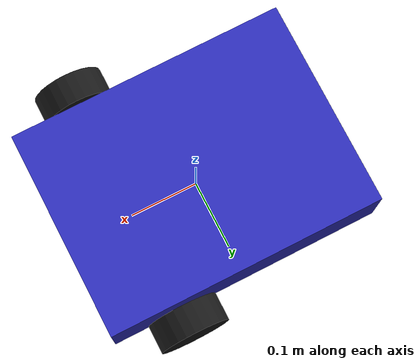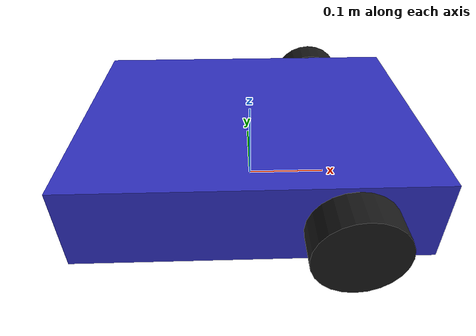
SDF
<?xml version="1.0" ?>
<sdf version="1.6">
  <world name="diff_drive_world">
    <!-- 물리 설정 -->
    <physics name="1ms" type="ode">
      <max_step_size>0.001</max_step_size>
      <real_time_factor>1.0</real_time_factor>
      <real_time_update_rate>1000</real_time_update_rate>
    </physics>

    <!-- 기본 플러그인 -->
    <plugin
      filename="ignition-gazebo-physics-system"
      name="ignition::gazebo::systems::Physics">
    </plugin>
    <plugin
      filename="ignition-gazebo-user-commands-system"
      name="ignition::gazebo::systems::UserCommands">
    </plugin>
    <plugin
      filename="ignition-gazebo-scene-broadcaster-system"
      name="ignition::gazebo::systems::SceneBroadcaster">
    </plugin>

    <!-- 조명 -->
    <light type="directional" name="sun">
      <cast_shadows>true</cast_shadows>
      <pose>0 0 10 0 0 0</pose>
      <diffuse>0.8 0.8 0.8 1</diffuse>
      <specular>0.2 0.2 0.2 1</specular>
      <direction>-0.5 0.1 -0.9</direction>
    </light>

    <!-- 지면 모델 포함 -->
    <include>
      <uri>file://models/ground_plane/model.sdf</uri>
    </include>

    <!-- 로봇 모델 포함 -->
    <include>
      <uri>file://models/diff_drive_robot/model.sdf</uri>
      <pose>0 0 0 0 0 0</pose>
    </include>
  </world>
</sdf>

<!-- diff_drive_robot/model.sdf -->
<sdf version="1.6">
  <model name="diff_drive_robot">
    <!-- 로봇 본체 -->
    <link name="chassis">
      <pose>0 0 0.05 0 0 0</pose>
      <inertial>
        <mass>5.0</mass>
        <inertia>
          <ixx>0.0417</ixx>
          <iyy>0.0417</iyy>
          <izz>0.0833</izz>
          <ixy>0</ixy>
          <ixz>0</ixz>
          <iyz>0</iyz>
        </inertia>
      </inertial>
      <collision name="collision">
        <geometry>
          <box>
            <size>0.4 0.3 0.1</size>
          </box>
        </geometry>
      </collision>
      <visual name="visual">
        <geometry>
          <box>
            <size>0.4 0.3 0.1</size>
          </box>
        </geometry>
        <material>
          <ambient>0.2 0.2 0.8 1</ambient>
          <diffuse>0.2 0.2 0.8 1</diffuse>
          <specular>0.1 0.1 0.1 1</specular>
        </material>
      </visual>
    </link>

    <!-- 좌측 바퀴 -->
    <link name="left_wheel">
      <pose>0.1 0.175 0.05 -1.5707 0 0</pose>
      <inertial>
        <mass>1.0</mass>
        <inertia>
          <ixx>0.0029</ixx>
          <iyy>0.0029</iyy>
          <izz>0.0052</izz>
          <ixy>0</ixy>
          <ixz>0</ixz>
          <iyz>0</iyz>
        </inertia>
      </inertial>
      <collision name="collision">
        <geometry>
          <cylinder>
            <radius>0.05</radius>
            <length>0.04</length>
          </cylinder>
        </geometry>
      </collision>
      <visual name="visual">
        <geometry>
          <cylinder>
            <radius>0.05</radius>
            <length>0.04</length>
          </cylinder>
        </geometry>
        <material>
          <ambient>0.1 0.1 0.1 1</ambient>
          <diffuse>0.1 0.1 0.1 1</diffuse>
          <specular>0.1 0.1 0.1 1</specular>
        </material>
      </visual>
    </link>

    <!-- 우측 바퀴 -->
    <link name="right_wheel">
      <pose>0.1 -0.175 0.05 -1.5707 0 0</pose>
      <inertial>
        <mass>1.0</mass>
        <inertia>
          <ixx>0.0029</ixx>
          <iyy>0.0029</iyy>
          <izz>0.0052</izz>
          <ixy>0</ixy>
          <ixz>0</ixz>
          <iyz>0</iyz>
        </inertia>
      </inertial>
      <collision name="collision">
        <geometry>
          <cylinder>
            <radius>0.05</radius>
            <length>0.04</length>
          </cylinder>
        </geometry>
      </collision>
      <visual name="visual">
        <geometry>
          <cylinder>
            <radius>0.05</radius>
            <length>0.04</length>
          </cylinder>
        </geometry>
        <material>
          <ambient>0.1 0.1 0.1 1</ambient>
          <diffuse>0.1 0.1 0.1 1</diffuse>
          <specular>0.1 0.1 0.1 1</specular>
        </material>
      </visual>
    </link>

    <!-- 캐스터 휠 -->
    <link name="caster">
      <pose>-0.15 0 0.025 0 0 0</pose>
      <inertial>
        <mass>0.5</mass>
        <inertia>
          <ixx>0.0001</ixx>
          <iyy>0.0001</iyy>
          <izz>0.0001</izz>
          <ixy>0</ixy>
          <ixz>0</ixz>
          <iyz>0</iyz>
        </inertia>
      </inertial>
      <collision name="collision">
        <geometry>
          <sphere>
            <radius>0.025</radius>
          </sphere>
        </geometry>
        <surface>
          <friction>
            <ode>
              <mu>0.1</mu>
              <mu2>0.1</mu2>
            </ode>
          </friction>
        </surface>
      </collision>
      <visual name="visual">
        <geometry>
          <sphere>
            <radius>0.025</radius>
          </sphere>
        </geometry>
        <material>
          <ambient>0.3 0.3 0.3 1</ambient>
          <diffuse>0.3 0.3 0.3 1</diffuse>
          <specular>0.1 0.1 0.1 1</specular>
        </material>
      </visual>
    </link>

    <!-- 좌측 바퀴 조인트 -->
    <joint name="left_wheel_joint" type="revolute">
      <parent>chassis</parent>
      <child>left_wheel</child>
      <axis>
        <xyz>0 0 1</xyz>
        <limit>
          <lower>-1e+16</lower>
          <upper>1e+16</upper>
        </limit>
      </axis>
    </joint>

    <!-- 우측 바퀴 조인트 -->
    <joint name="right_wheel_joint" type="revolute">
      <parent>chassis</parent>
      <child>right_wheel</child>
      <axis>
        <xyz>0 0 1</xyz>
        <limit>
          <lower>-1e+16</lower>
          <upper>1e+16</upper>
        </limit>
      </axis>
    </joint>

    <!-- 캐스터 볼 조인트 -->
    <joint name="caster_joint" type="ball">
      <parent>chassis</parent>
      <child>caster</child>
    </joint>

    <!-- 차동 구동 플러그인 -->
    <plugin
      filename="ignition-gazebo-diff-drive-system"
      name="ignition::gazebo::systems::DiffDrive">
      <left_joint>left_wheel_joint</left_joint>
      <right_joint>right_wheel_joint</right_joint>
      <wheel_separation>0.35</wheel_separation>
      <wheel_radius>0.05</wheel_radius>
      <odom_publish_frequency>10</odom_publish_frequency>
      <topic>cmd_vel</topic>
    </plugin>
  </model>
</sdf>
